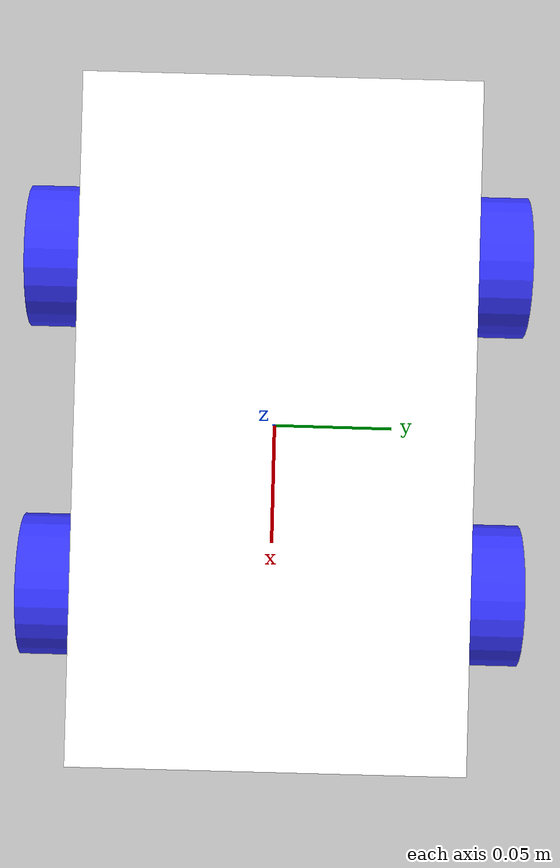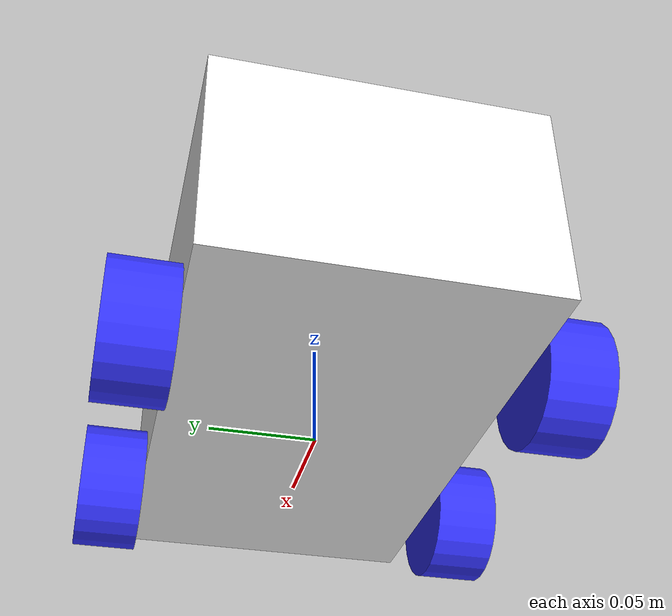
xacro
<?xml version="1.0"?>
<robot xmlns:xacro="http://www.ros.org/wiki/xacro" >

    <xacro:include filename="inertial_macros.xacro"/>

    <material name="white">
        <color rgba="1 1 1 1" />
    </material>
    <material name="orange">
        <color rgba="1 0.3 0.1 1"/>
    </material>
    <material name="blue">
        <color rgba="0.2 0.2 1 1"/>
    </material>
    <material name="black">
        <color rgba="0 0 0 1"/>
    </material>
    <material name="red">
        <color rgba="1 0 0 1"/>
    </material>

    <!-- BASE LINK -->

    <link name="base_link">

    </link>

    <!-- CHASSIS LINK -->
    <joint name="chassis_joint" type="fixed">
        <parent link="base_link"/>
        <child link="chassis"/>
        <origin xyz="0 0 0"/>
    </joint>

    <link name="chassis">
        <visual>
            <origin xyz="0 0 0.05"/>
            <geometry>
                <box size="0.26 0.15 0.1"/>
            </geometry>
            <material name="white"/>
        </visual>
    </link>

    <!-- FRONT LEFT WHEELS -->
    <joint name="front_left_wheel_joint" type="continuous">
        <parent link="base_link"/>
        <child link="front_left_wheel"/>
        <origin xyz="0.07 0.09 0" rpy="${-pi/2} 0 0"/>
        <axis xyz="0 0 1"/>
    </joint>

    <link name="front_left_wheel">
        <visual>
            <geometry>
                <cylinder radius="0.03" length="0.03"/>
            </geometry>
            <material name="blue"/>
        </visual>
    </link>

    <!-- FRONT RIGHT WHEELS -->
    <joint name="front_right_wheel_joint" type="continuous">
        <parent link="base_link"/>
        <child link="front_right_wheel"/>
        <origin xyz="0.07 -0.09 0" rpy="${pi/2} 0 0"/>
        <axis xyz="0 0 1"/>
    </joint>

    <link name="front_right_wheel">
        <visual>
            <geometry>
                <cylinder radius="0.03" length="0.03"/>
            </geometry>
            <material name="blue"/>
        </visual>
    </link>

    <!-- REAR LEFT WHEELS -->
    <joint name="rear_left_wheel_joint" type="continuous">
        <parent link="base_link"/>
        <child link="rear_left_wheel"/>
        <origin xyz="-0.07 0.09 0" rpy="${-pi/2} 0 0"/>
        <axis xyz="0 0 1"/>
    </joint>

    <link name="rear_left_wheel">
        <visual>
            <geometry>
                <cylinder radius="0.03" length="0.03"/>
            </geometry>
            <material name="blue"/>
        </visual>
    </link>

    <!-- REAR RIGHT WHEELS -->
    <joint name="rear_right_wheel_joint" type="continuous">
        <parent link="base_link"/>
        <child link="rear_right_wheel"/>
        <origin xyz="-0.07 -0.09 0" rpy="${pi/2} 0 0"/>
        <axis xyz="0 0 1"/>
    </joint>

    <link name="rear_right_wheel">
        <visual>
            <geometry>
                <cylinder radius="0.03" length="0.03"/>
            </geometry>
            <material name="blue"/>
        </visual>
    </link>

    <!-- END OF WHEELS -->
</robot>
